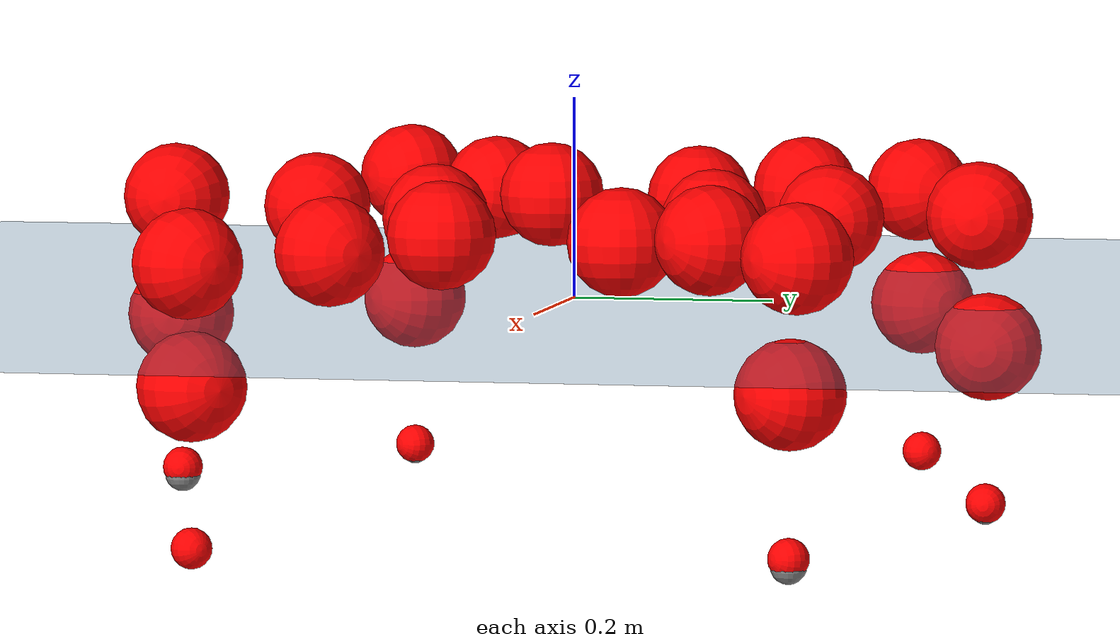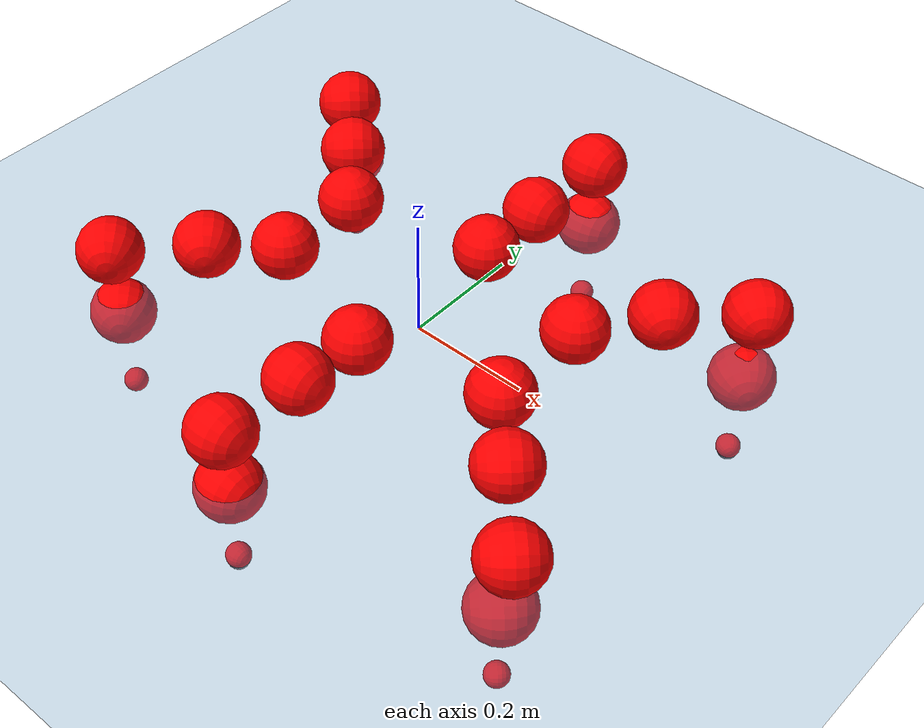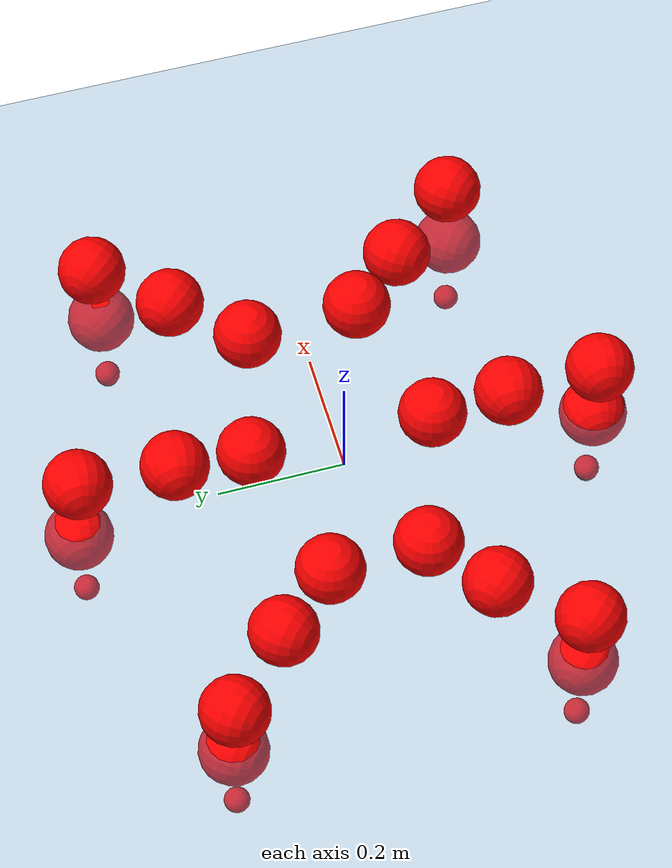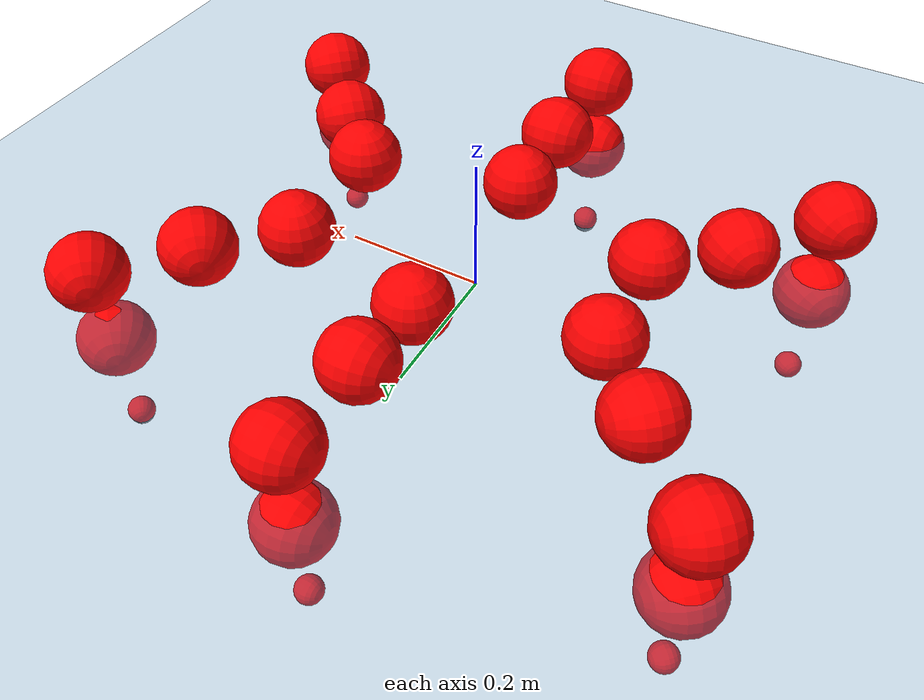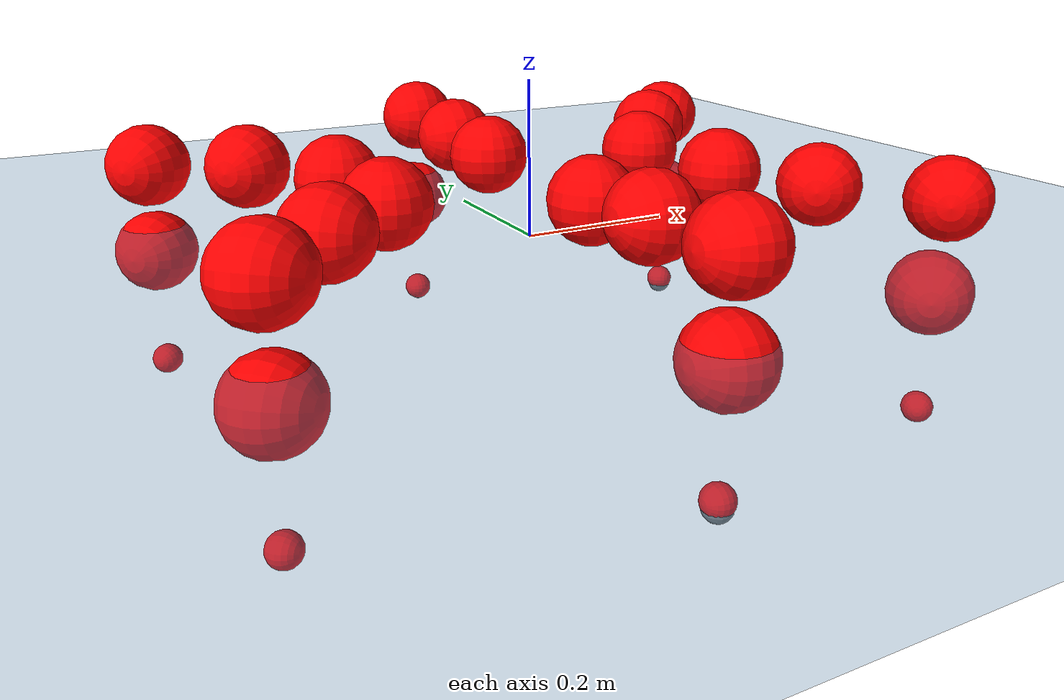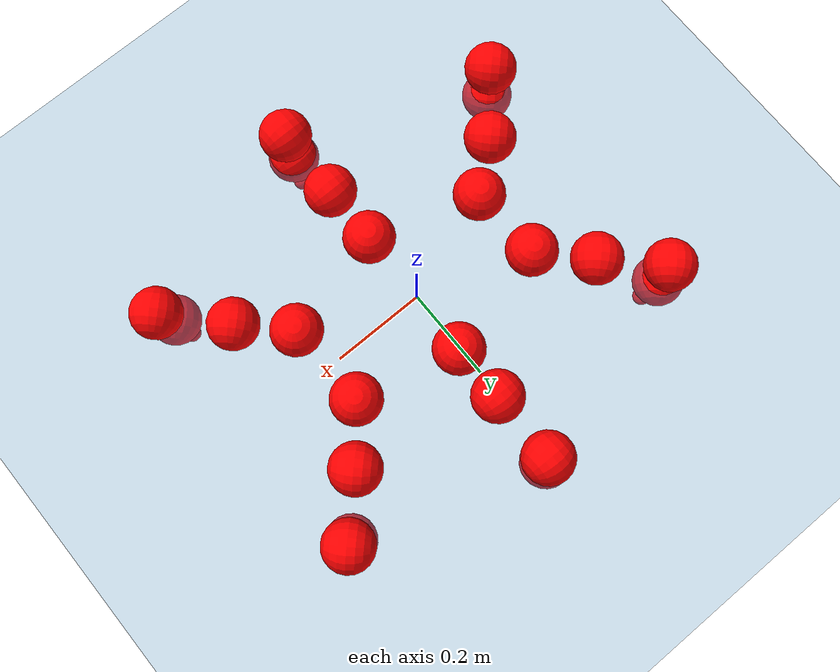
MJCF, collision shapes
<mujoco model="Golem">
  <compiler angle="radian" assetdir="assets" balanceinertia="true" inertiafromgeom="false"/>

  <option timestep="0.005" density="1.2" viscosity="2e-05"/>

  <size nkey="1"/>

  <visual>
    <quality shadowsize="8192"/>
    <map shadowclip="0.5"/>
  </visual>

  <default>
    <default class="/">
      <joint armature="0.01" damping="0.01" frictionloss="0.01"/>
      <geom contype="0" conaffinity="0" group="1" solref="-1000 -80"/>
      <site size="0.01 0.005 0.005" group="5"/>
      <general forcelimited="true" biastype="affine" gainprm="25" biasprm="0 -25 -0.5"/>
      <default class="visual">
        <geom type="mesh" group="2"/>
      </default>
      <default class="collision">
        <geom group="3"/>
      </default>
      <default class="foot">
        <geom size="0.01 0 0" condim="6" group="4" priority="1" solimp="0.015 1 0.01"/>
      </default>
      <default class="reward_collision_sphere">
        <geom group="5" rgba="1 0 0 1"/>
      </default>
    </default>
  </default>

  <asset>
    <texture type="skybox" colorspace="auto" name="//unnamed_texture_0" builtin="gradient" rgb1="0.95 0.95 0.95" rgb2="0.95 0.95 0.95" width="100" height="600"/>
    <texture type="2d" colorspace="auto" name="texplane" builtin="checker" rgb1="0.345 0.575 0.748" rgb2="0.345 0.575 0.748" markrgb="1 1 1" width="512" height="512"/>
    <material name="MatPlane" class="/" texture="texplane" texuniform="true" texrepeat="2 2" specular="0.9"/>
    <mesh name="body" class="/" file="body.stl" scale="0.001 0.001 0.001"/>
    <mesh name="coxa" class="/" file="coxa.stl" scale="0.001 0.001 0.001"/>
    <mesh name="femur" class="/" file="femur.stl" scale="0.001 0.001 0.001"/>
    <mesh name="tibia" class="/" file="tibia.stl" scale="0.001 0.001 0.001"/>
    <mesh name="tarsus" class="/" file="tarsus.stl" scale="0.001 0.001 0.001"/>
  </asset>

  <worldbody>
    <geom name="floor" class="/" size="100 100 0.125" type="plane" group="0" material="MatPlane"/>
    <light name="toplight_shadow" class="/" pos="0 0 5" dir="0.0990148 0.0990148 -0.990148" type="directional" ambient="0.04 0.04 0.04" diffuse="0.55 0.55 0.55" specular="0.12 0.12 0.12"/>
    <light name="toplight_fill" class="/" pos="0 0 5" dir="0.0990148 0.0990148 -0.990148" type="directional" castshadow="false" ambient="0.04 0.04 0.04" diffuse="0.3 0.3 0.3" specular="0.08 0.08 0.08"/>
    <body name="trunk" pos="0.00610917 0.00531075 -0.000375065" quat="0.999998 -0.000258958 0.00140195 0.00104064">
      <inertial pos="-0.00598076 0.000334638 0.010918" quat="0.99962 0.0106912 -0.0247286 -0.00588006" mass="8.2376" diaginertia="0.0616471 0.0434289 0.0214746"/>
      <joint name="//unnamed_joint_0" type="free"/>
      <geom name="//unnamed_geom_1" class="/" pos="0 0 0.0768034" quat="1 0 0 0" type="mesh" rgba="0.9 0.9 0.9 1" mesh="body"/>
      <site name="imu" class="/" pos="0.146193 -0.0304098 0.112413" size="0.0133579"/>
      <camera name="track" class="/" pos="0 -2.7156 0" quat="0.707107 0.707107 0 0" mode="trackcom"/>
      <camera name="ego_camera" class="/" pos="0.188438 0 0.120005" quat="-0.5 -0.5 0.5 0.5"/>
      <body name="coxa_RR" pos="-0.255344 -0.104278 0.0856113" quat="0.3832 0.000344417 0.000848675 -0.923665">
        <inertial pos="-0.000729631 7.37818e-05 -0.0024137" quat="0.999971 0.00309079 0.00448332 -0.00523473" mass="0.469522" diaginertia="0.0674898 0.0460603 0.0282141"/>
        <joint name="coxa_joint_RR" class="/" pos="0 0 0" axis="0.0056067 0.00129928 -0.999983" stiffness="0.00750148" range="-3.12802 3.20525" armature="0.0134772" damping="0.019882" frictionloss="0.0126899"/>
        <geom name="//unnamed_geom_2" class="/" type="mesh" rgba="0.2 0.2 0.2 1" mesh="coxa"/>
        <geom name="//unnamed_geom_3" class="reward_collision_sphere" size="0.0534317" pos="-0.0434857 0 0"/>
        <body name="femur_RR" pos="0.0787093 -0.0119832 -0.000760487" quat="0.500598 -0.498936 0.49988 0.500583">
          <inertial pos="0.0111858 0.000226859 0.0123084" quat="0.998346 0.0437422 -0.0188971 0.0321667" mass="0.525649" diaginertia="0.0690192 0.0498568 0.0271417"/>
          <joint name="femur_joint_RR" class="/" pos="0 0 0" axis="0.0162133 -0.0129665 -0.999784" range="-3.10771 3.11962" armature="0.0122686" damping="0" frictionloss="0.013683"/>
          <geom name="//unnamed_geom_4" class="/" type="mesh" rgba="0.9 0.9 0.9 1" mesh="femur"/>
          <geom name="//unnamed_geom_5" class="reward_collision_sphere" size="0.0534317"/>
          <body name="tibia_RR" pos="-0.00453283 -0.147432 0.0109878" quat="2.10839e-05 1 -0.000701074 0.000154793">
            <inertial pos="0.00169049 0.00118583 0.00897286" quat="0.999657 0.00937782 -0.021895 0.010888" mass="0.383348" diaginertia="0.0540316 0.0352854 0.0211792"/>
            <joint name="tibia_joint_RR" class="/" pos="0 0 0" axis="-0.0132286 -0.0386488 0.999165" stiffness="0.0246717" range="-3.03111 3.12561" armature="0.0159105" damping="0.002941" frictionloss="0.0184446"/>
            <geom name="//unnamed_geom_6" class="/" type="mesh" rgba="0.2 0.2 0.2 1" mesh="tibia"/>
            <geom name="//unnamed_geom_7" class="reward_collision_sphere" size="0.0534317"/>
            <body name="tarsus_RR" pos="0.129232 -0.00334754 0.00156267" quat="1 -0.000172238 2.8921e-05 -0.00073091">
              <inertial pos="0.0908394 -0.000335141 0.00216945" quat="0.48653 0.487954 0.548047 0.474167" mass="0.431684" diaginertia="0.0656682 0.0505955 0.0236656"/>
              <joint name="tarsus_joint_RR" class="/" pos="0 0 0" axis="0.0120175 -0.0577649 0.998258" range="-3.16339 3.25844" armature="0.0156058" damping="0.0263754" frictionloss="0.0122828"/>
              <geom name="//unnamed_geom_8" class="/" type="mesh" rgba="0.9 0.9 0.9 1" mesh="tarsus"/>
              <geom name="foot_1" class="foot" size="0.0142173" pos="0.162347 0 0" quat="0 -0.707107 0 0.707107"/>
              <geom name="//unnamed_geom_10" class="reward_collision_sphere" size="0.0534317"/>
              <geom name="//unnamed_geom_11" class="reward_collision_sphere" size="0.0200369" pos="0.155824 0 0"/>
              <site name="foot_1" class="foot" pos="0.162347 0 0" quat="0 -0.707107 0 0.707107" size="0.0133579"/>
            </body>
          </body>
        </body>
      </body>
      <body name="coxa_RM" pos="-0.000344987 -0.19017 0.0787993" quat="0.708597 0.000344562 0.00552407 -0.705592">
        <inertial pos="0.00825996 0.00152266 0.0100296" quat="0.999335 0.0123354 0.0288433 0.0185898" mass="0.472185" diaginertia="0.0780767 0.0462551 0.0265742"/>
        <joint name="coxa_joint_RM" class="/" pos="0 0 0" axis="0.0146422 0.0117063 -0.999824" range="-3.12871 3.12693" armature="0.0135616" damping="0.00840009" frictionloss="0.0157143"/>
        <geom name="//unnamed_geom_12" class="/" type="mesh" rgba="0.2 0.2 0.2 1" mesh="coxa"/>
        <geom name="//unnamed_geom_13" class="reward_collision_sphere" size="0.0534317" pos="-0.0434857 0 0"/>
        <body name="femur_RM" pos="0.0776304 -0.000202322 0.0108528" quat="0.501852 -0.500297 0.500707 0.497132">
          <inertial pos="-0.0103767 0.000978388 0.000205316" quat="0.998469 -0.0337955 0.0237246 -0.0367926" mass="0.481653" diaginertia="0.0627491 0.050674 0.024823"/>
          <joint name="femur_joint_RM" class="/" pos="0 0 0" axis="-0.0147199 0.038327 -0.999157" stiffness="0.0254676" range="-3.10741 3.11376" armature="0.0116696" damping="0" frictionloss="0.0128149"/>
          <geom name="//unnamed_geom_14" class="/" type="mesh" rgba="0.9 0.9 0.9 1" mesh="femur"/>
          <geom name="//unnamed_geom_15" class="reward_collision_sphere" size="0.0534317"/>
          <body name="tibia_RM" pos="-0.00786619 -0.145761 -0.00161797" quat="-0.000465497 1 -0.000148527 0.000120956">
            <inertial pos="0.0111337 -0.00314542 0.00542494" quat="1 -7.60308e-05 2.82047e-05 -2.19693e-05" mass="0.439114" diaginertia="0.0568102 0.0493798 0.0278403"/>
            <joint name="tibia_joint_RM" class="/" pos="0 0 0" axis="-0.0238306 -0.0196912 0.999522" stiffness="0.00332755" range="-3.10939 3.20005" armature="0.0138558" damping="0.0223912" frictionloss="0.0152782"/>
            <geom name="//unnamed_geom_16" class="/" type="mesh" rgba="0.2 0.2 0.2 1" mesh="tibia"/>
            <geom name="//unnamed_geom_17" class="reward_collision_sphere" size="0.0534317"/>
            <body name="tarsus_RM" pos="0.118791 -0.0032718 -0.000172494" quat="1 -0.000402805 0.000544585 -0.000162501">
              <inertial pos="0.0879783 0.00205778 -0.000797407" quat="0.497971 0.501934 0.498572 0.501511" mass="0.469429" diaginertia="0.0694831 0.0441094 0.0220042"/>
              <joint name="tarsus_joint_RM" class="/" pos="0 0 0" axis="-0.0335395 -0.0169771 0.999293" range="-3.11487 3.13712" armature="0.0139164" damping="0.008591" frictionloss="0.0141417"/>
              <geom name="//unnamed_geom_18" class="/" type="mesh" rgba="0.9 0.9 0.9 1" mesh="tarsus"/>
              <geom name="foot_2" class="foot" size="0.0181845" pos="0.162347 0 0" quat="0 -0.707107 0 0.707107"/>
              <geom name="//unnamed_geom_20" class="reward_collision_sphere" size="0.0534317"/>
              <geom name="//unnamed_geom_21" class="reward_collision_sphere" size="0.0200369" pos="0.155824 0 0"/>
              <site name="foot_2" class="foot" pos="0.162347 0 0" quat="0 -0.707107 0 0.707107" size="0.0133579"/>
            </body>
          </body>
        </body>
      </body>
      <body name="coxa_RF" pos="0.256867 -0.121814 0.0803931" quat="0.923895 -3.53405e-05 -2.44074e-05 -0.382647">
        <inertial pos="0.011959 -6.33382e-05 0.00186782" quat="0.999074 0.00462575 -0.031062 -0.0294174" mass="0.384406" diaginertia="0.0573462 0.0500625 0.0236904"/>
        <joint name="coxa_joint_RF" class="/" pos="0 0 0" axis="-0.00859178 -0.00164596 -0.999962" range="-3.07106 3.13788" armature="0.00881604" damping="0.0165184" frictionloss="0.0148789"/>
        <geom name="//unnamed_geom_22" class="/" type="mesh" rgba="0.2 0.2 0.2 1" mesh="coxa"/>
        <geom name="//unnamed_geom_23" class="reward_collision_sphere" size="0.0534317" pos="-0.0434857 0 0"/>
        <body name="femur_RF" pos="0.0828087 -0.0023368 -0.0102527" quat="0.499432 -0.500387 0.500674 0.499506">
          <inertial pos="-0.00509007 -0.0110788 -0.0046544" quat="0.999986 -0.00528882 8.37177e-05 0.000250627" mass="0.52066" diaginertia="0.0599484 0.0516502 0.0249818"/>
          <joint name="femur_joint_RF" class="/" pos="0 0 0" axis="0.0176676 0.0228767 -0.999582" stiffness="0.0536688" range="-3.13873 3.26421" armature="0.0140963" damping="0" frictionloss="0.0142201"/>
          <geom name="//unnamed_geom_24" class="/" type="mesh" rgba="0.9 0.9 0.9 1" mesh="femur"/>
          <geom name="//unnamed_geom_25" class="reward_collision_sphere" size="0.0534317"/>
          <body name="tibia_RF" pos="0.00468283 -0.154486 -0.00816864" quat="0.000642793 1 -0.000268201 0.000233527">
            <inertial pos="0.00977101 0.00675261 -0.00865969" quat="0.999678 4.56652e-05 0.0181428 -0.0177293" mass="0.434295" diaginertia="0.0627232 0.0467021 0.0253381"/>
            <joint name="tibia_joint_RF" class="/" pos="0 0 0" axis="0.00105288 0.00369382 0.999993" range="-3.11958 3.27816" armature="0.012346" damping="0.0670715" frictionloss="0.014269"/>
            <geom name="//unnamed_geom_26" class="/" type="mesh" rgba="0.2 0.2 0.2 1" mesh="tibia"/>
            <geom name="//unnamed_geom_27" class="reward_collision_sphere" size="0.0534317"/>
            <body name="tarsus_RF" pos="0.119295 -0.00985981 0.00931747" quat="0.999995 0.00200994 -0.000679081 0.00238102">
              <inertial pos="0.0858212 -0.000722235 -0.0020108" quat="0.497854 0.50048 0.498388 0.50326" mass="0.456256" diaginertia="0.0603954 0.0390339 0.027123"/>
              <joint name="tarsus_joint_RF" class="/" pos="0 0 0" axis="0.0087657 0.0103138 0.999908" stiffness="0.0118259" range="-3.0482 3.16005" armature="0.00821821" damping="0.00472223" frictionloss="0.00531885"/>
              <geom name="//unnamed_geom_28" class="/" type="mesh" rgba="0.9 0.9 0.9 1" mesh="tarsus"/>
              <geom name="foot_3" class="foot" size="0.00814942" pos="0.162347 0 0" quat="0 -0.707107 0 0.707107"/>
              <geom name="//unnamed_geom_30" class="reward_collision_sphere" size="0.0534317"/>
              <geom name="//unnamed_geom_31" class="reward_collision_sphere" size="0.0200369" pos="0.155824 0 0"/>
              <site name="foot_3" class="foot" pos="0.162347 0 0" quat="0 -0.707107 0 0.707107" size="0.0133579"/>
            </body>
          </body>
        </body>
      </body>
      <body name="coxa_LR" pos="-0.260822 0.110566 0.0844088" quat="0.383787 0.00345824 0.00330702 0.923409">
        <inertial pos="-0.000124358 -0.00106828 0.0115296" quat="0.99927 -0.0104721 0.00663606 -0.0361316" mass="0.611258" diaginertia="0.074106 0.0531818 0.0287043"/>
        <joint name="coxa_joint_LR" class="/" pos="0 0 0" axis="-6.27823e-05 3.72464e-05 -1" range="-3.10326 2.90566" armature="0.00819938" damping="0.00837674" frictionloss="0.021115"/>
        <geom name="//unnamed_geom_32" class="/" type="mesh" rgba="0.2 0.2 0.2 1" mesh="coxa"/>
        <geom name="//unnamed_geom_33" class="reward_collision_sphere" size="0.0534317" pos="-0.0434857 0 0"/>
        <body name="femur_LR" pos="0.0846814 -0.00573538 0.00394084" quat="0.499789 -0.500472 0.499397 0.500341">
          <inertial pos="-0.00114957 -0.00103049 -0.000552041" quat="0.99968 0.00805377 -0.0231604 0.00624387" mass="0.505105" diaginertia="0.070689 0.0415756 0.0267476"/>
          <joint name="femur_joint_LR" class="/" pos="0 0 0" axis="-0.00506739 0.0101937 0.999935" stiffness="0.029407" range="-3.10838 3.29076" armature="0.00942023" damping="0" frictionloss="0.0145957"/>
          <geom name="//unnamed_geom_34" class="/" type="mesh" rgba="0.9 0.9 0.9 1" mesh="femur"/>
          <geom name="//unnamed_geom_35" class="reward_collision_sphere" size="0.0534317"/>
          <body name="tibia_LR" pos="0.00842086 -0.145912 0.00212535" quat="0.00111639 0.999993 0.00239396 -0.00277062">
            <inertial pos="-0.00582665 -0.0106362 0.000936563" quat="0.999208 -0.0261761 -0.0155367 0.0256225" mass="0.510992" diaginertia="0.0536979 0.0408125 0.0281357"/>
            <joint name="tibia_joint_LR" class="/" pos="0 0 0" axis="-0.00360974 -0.0172741 -0.999844" range="-3.16783 3.11883" armature="0.0118119" damping="0" frictionloss="0.010029"/>
            <geom name="//unnamed_geom_36" class="/" type="mesh" rgba="0.2 0.2 0.2 1" mesh="tibia"/>
            <geom name="//unnamed_geom_37" class="reward_collision_sphere" size="0.0534317"/>
            <body name="tarsus_LR" pos="0.117901 0.00279117 0.00418166" quat="0.999998 5.51692e-05 0.000226881 0.0017994">
              <inertial pos="0.0911456 0.00579131 0.00240602" quat="0.503227 0.49138 0.490679 0.514337" mass="0.547212" diaginertia="0.0739792 0.0544127 0.0290035"/>
              <joint name="tarsus_joint_LR" class="/" pos="0 0 0" axis="-0.00178822 0.00603282 -0.99998" range="-3.13803 3.15133" armature="0.0216398" damping="0.0261359" frictionloss="0.0150236"/>
              <geom name="//unnamed_geom_38" class="/" type="mesh" rgba="0.9 0.9 0.9 1" mesh="tarsus"/>
              <geom name="foot_4" class="foot" size="0.0129572" pos="0.162347 0 0" quat="0.707107 0 -0.707107 0"/>
              <geom name="//unnamed_geom_40" class="reward_collision_sphere" size="0.0534317"/>
              <geom name="//unnamed_geom_41" class="reward_collision_sphere" size="0.0200369" pos="0.155824 0 0"/>
              <site name="foot_4" class="foot" pos="0.162347 0 0" quat="0.707107 0 -0.707107 0" size="0.0133579"/>
            </body>
          </body>
        </body>
      </body>
      <body name="coxa_LM" pos="0.00645817 0.181473 0.0784939" quat="0.708236 -0.00507617 -0.0035684 0.705949">
        <inertial pos="-0.0085857 0.00962382 0.00531168" quat="0.999113 0.00223661 -0.00275021 0.04196" mass="0.465829" diaginertia="0.066392 0.0436191 0.0229912"/>
        <joint name="coxa_joint_LM" class="/" pos="0 0 0" axis="-0.000166795 0.000393899 -1" range="-3.17386 3.1652" armature="0.00573411" damping="0.0290544" frictionloss="0.0119263"/>
        <geom name="//unnamed_geom_42" class="/" type="mesh" rgba="0.2 0.2 0.2 1" mesh="coxa"/>
        <geom name="//unnamed_geom_43" class="reward_collision_sphere" size="0.0534317" pos="-0.0434857 0 0"/>
        <body name="femur_LM" pos="0.0748322 -0.00260449 0.00639759" quat="0.501562 -0.496915 0.500577 0.500933">
          <inertial pos="0.00821103 0.000183677 0.00972079" quat="0.999652 0.0118821 0.0143803 -0.0186756" mass="0.385009" diaginertia="0.0591599 0.0425589 0.0229181"/>
          <joint name="femur_joint_LM" class="/" pos="0 0 0" axis="-0.00925093 0.00507926 0.999944" range="-3.25628 3.10759" armature="0.0090507" damping="0.0233775" frictionloss="0.0131702"/>
          <geom name="//unnamed_geom_44" class="/" type="mesh" rgba="0.9 0.9 0.9 1" mesh="femur"/>
          <geom name="//unnamed_geom_45" class="reward_collision_sphere" size="0.0534317"/>
          <body name="tibia_LM" pos="-0.00639367 -0.149247 -0.00225527" quat="0.000623427 1 0.000596202 -0.000253863">
            <inertial pos="-0.0112625 -0.0118786 -0.0122685" quat="0.999972 0.00484678 -0.00561211 0.000844344" mass="0.466951" diaginertia="0.0658982 0.0507316 0.0222922"/>
            <joint name="tibia_joint_LM" class="/" pos="0 0 0" axis="0.0245196 0.00210558 -0.999697" stiffness="0.0360792" range="-3.17164 3.16856" armature="0.0089479" damping="0" frictionloss="0.0183889"/>
            <geom name="//unnamed_geom_46" class="/" type="mesh" rgba="0.2 0.2 0.2 1" mesh="tibia"/>
            <geom name="//unnamed_geom_47" class="reward_collision_sphere" size="0.0534317"/>
            <body name="tarsus_LM" pos="0.130295 0.00899743 -0.00806334" quat="0.999995 -0.00205093 -0.000294151 -0.00228903">
              <inertial pos="0.0841853 -0.00323335 -0.00562445" quat="0.50091 0.502435 0.498943 0.497699" mass="0.408296" diaginertia="0.0620899 0.0332361 0.0222562"/>
              <joint name="tarsus_joint_LM" class="/" pos="0 0 0" axis="-0.0321798 0.0245598 -0.99918" range="-2.87911 3.15015" armature="0.0124417" damping="0" frictionloss="0.0139035"/>
              <geom name="//unnamed_geom_48" class="/" type="mesh" rgba="0.9 0.9 0.9 1" mesh="tarsus"/>
              <geom name="foot_5" class="foot" size="0.0143198" pos="0.162347 0 0" quat="0.707107 0 -0.707107 0"/>
              <geom name="//unnamed_geom_50" class="reward_collision_sphere" size="0.0534317"/>
              <geom name="//unnamed_geom_51" class="reward_collision_sphere" size="0.0200369" pos="0.155824 0 0"/>
              <site name="foot_5" class="foot" pos="0.162347 0 0" quat="0.707107 0 -0.707107 0" size="0.0133579"/>
            </body>
          </body>
        </body>
      </body>
      <body name="coxa_LF" pos="0.251795 0.11747 0.0758743" quat="0.923677 0.00407238 0.00279607 0.38314">
        <inertial pos="-0.000320007 -0.0115461 -0.00192348" quat="0.999975 -0.00642387 -0.00308818 -0.000211109" mass="0.447812" diaginertia="0.0584785 0.0356485 0.0216828"/>
        <joint name="coxa_joint_LF" class="/" pos="0 0 0" axis="-0.00916105 -0.027989 -0.999566" range="-3.11867 3.16039" armature="0.00534049" damping="0.0045981" frictionloss="0.0121607"/>
        <geom name="//unnamed_geom_52" class="/" type="mesh" rgba="0.2 0.2 0.2 1" mesh="coxa"/>
        <geom name="//unnamed_geom_53" class="reward_collision_sphere" size="0.0534317" pos="-0.0434857 0 0"/>
        <body name="femur_LF" pos="0.0885972 0.0130548 0.0105998" quat="0.497882 -0.502706 0.50123 0.498166">
          <inertial pos="-0.00644007 0.000430361 -0.0122456" quat="0.998928 0.0326955 0.0186239 0.0269572" mass="0.482138" diaginertia="0.0687657 0.0390211 0.0246309"/>
          <joint name="femur_joint_LF" class="/" pos="0 0 0" axis="0.0366417 0.0123865 0.999252" stiffness="0.0420104" range="-3.17115 3.36005" armature="0.0140749" damping="0.0362178" frictionloss="0.0125919"/>
          <geom name="//unnamed_geom_54" class="/" type="mesh" rgba="0.9 0.9 0.9 1" mesh="femur"/>
          <geom name="//unnamed_geom_55" class="reward_collision_sphere" size="0.0534317"/>
          <body name="tibia_LF" pos="0.0072509 -0.142221 0.00122357" quat="0.00467711 0.999989 -0.000556415 0.000306525">
            <inertial pos="-0.000907144 0.0106438 0.000672014" quat="1 3.75807e-05 7.96414e-05 5.93051e-05" mass="0.466475" diaginertia="0.0677893 0.0461033 0.0255621"/>
            <joint name="tibia_joint_LF" class="/" pos="0 0 0" axis="0.0394161 0.0166134 -0.999085" range="-2.96636 3.16269" armature="0.00956592" damping="0.012438" frictionloss="0.00666559"/>
            <geom name="//unnamed_geom_56" class="/" type="mesh" rgba="0.2 0.2 0.2 1" mesh="tibia"/>
            <geom name="//unnamed_geom_57" class="reward_collision_sphere" size="0.0534317"/>
            <body name="tarsus_LF" pos="0.128991 -0.0059403 0.00362822" quat="0.99998 0.00185958 -0.00600402 -0.000367365">
              <inertial pos="0.0931668 0.000360683 -0.00100546" quat="0.500635 0.501358 0.501883 0.496103" mass="0.463304" diaginertia="0.0681039 0.048413 0.0282074"/>
              <joint name="tarsus_joint_LF" class="/" pos="0 0 0" axis="0.0392132 0.0470754 -0.998121" range="-3.19184 3.30974" armature="0.0116285" damping="0.0593276" frictionloss="0.0104056"/>
              <geom name="//unnamed_geom_58" class="/" type="mesh" rgba="0.9 0.9 0.9 1" mesh="tarsus"/>
              <geom name="foot_6" class="foot" size="0.017695" pos="0.162347 0 0" quat="0.707107 0 -0.707107 0"/>
              <geom name="//unnamed_geom_60" class="reward_collision_sphere" size="0.0534317"/>
              <geom name="//unnamed_geom_61" class="reward_collision_sphere" size="0.0200369" pos="0.155824 0 0"/>
              <site name="foot_6" class="foot" pos="0.162347 0 0" quat="0.707107 0 -0.707107 0" size="0.0133579"/>
            </body>
          </body>
        </body>
      </body>
    </body>
  </worldbody>

  <contact>
    <pair class="/" geom1="floor" geom2="foot_1" name="//unnamed_contact_0"/>
    <pair class="/" geom1="floor" geom2="foot_2" name="//unnamed_contact_1"/>
    <pair class="/" geom1="floor" geom2="foot_3" name="//unnamed_contact_2"/>
    <pair class="/" geom1="floor" geom2="foot_4" name="//unnamed_contact_3"/>
    <pair class="/" geom1="floor" geom2="foot_5" name="//unnamed_contact_4"/>
    <pair class="/" geom1="floor" geom2="foot_6" name="//unnamed_contact_5"/>
  </contact>

  <actuator>
    <general name="coxa_joint_RR" class="/" joint="coxa_joint_RR" forcerange="-13.6861 13.6861" gainprm="30.4373" biasprm="0 -30.4373 -0.759559"/>
    <general name="femur_joint_RR" class="/" joint="femur_joint_RR" forcerange="-8.29602 8.29602" gainprm="30.4373" biasprm="0 -30.4373 -0.759559"/>
    <general name="tibia_joint_RR" class="/" joint="tibia_joint_RR" forcerange="-14.0977 14.0977" gainprm="30.4373" biasprm="0 -30.4373 -0.759559"/>
    <general name="tarsus_joint_RR" class="/" joint="tarsus_joint_RR" forcerange="-7.97119 7.97119" gainprm="30.4373" biasprm="0 -30.4373 -0.759559"/>
    <general name="coxa_joint_RM" class="/" joint="coxa_joint_RM" forcerange="-9.68034 9.68034" gainprm="30.4373" biasprm="0 -30.4373 -0.759559"/>
    <general name="femur_joint_RM" class="/" joint="femur_joint_RM" forcerange="-9.81077 9.81077" gainprm="30.4373" biasprm="0 -30.4373 -0.759559"/>
    <general name="tibia_joint_RM" class="/" joint="tibia_joint_RM" forcerange="-13.3002 13.3002" gainprm="30.4373" biasprm="0 -30.4373 -0.759559"/>
    <general name="tarsus_joint_RM" class="/" joint="tarsus_joint_RM" forcerange="-5.5567 5.5567" gainprm="30.4373" biasprm="0 -30.4373 -0.759559"/>
    <general name="coxa_joint_RF" class="/" joint="coxa_joint_RF" forcerange="-9.4606 9.4606" gainprm="30.4373" biasprm="0 -30.4373 -0.759559"/>
    <general name="femur_joint_RF" class="/" joint="femur_joint_RF" forcerange="-9.19654 9.19654" gainprm="30.4373" biasprm="0 -30.4373 -0.759559"/>
    <general name="tibia_joint_RF" class="/" joint="tibia_joint_RF" forcerange="-5.93243 5.93243" gainprm="30.4373" biasprm="0 -30.4373 -0.759559"/>
    <general name="tarsus_joint_RF" class="/" joint="tarsus_joint_RF" forcerange="-8.37898 8.37898" gainprm="30.4373" biasprm="0 -30.4373 -0.759559"/>
    <general name="coxa_joint_LR" class="/" joint="coxa_joint_LR" forcerange="-9.73081 9.73081" gainprm="30.4373" biasprm="0 -30.4373 -0.759559"/>
    <general name="femur_joint_LR" class="/" joint="femur_joint_LR" forcerange="-12.8066 12.8066" gainprm="30.4373" biasprm="0 -30.4373 -0.759559"/>
    <general name="tibia_joint_LR" class="/" joint="tibia_joint_LR" forcerange="-11.0882 11.0882" gainprm="30.4373" biasprm="0 -30.4373 -0.759559"/>
    <general name="tarsus_joint_LR" class="/" joint="tarsus_joint_LR" forcerange="-12.058 12.058" gainprm="30.4373" biasprm="0 -30.4373 -0.759559"/>
    <general name="coxa_joint_LM" class="/" joint="coxa_joint_LM" forcerange="-11.0906 11.0906" gainprm="30.4373" biasprm="0 -30.4373 -0.759559"/>
    <general name="femur_joint_LM" class="/" joint="femur_joint_LM" forcerange="-10.3491 10.3491" gainprm="30.4373" biasprm="0 -30.4373 -0.759559"/>
    <general name="tibia_joint_LM" class="/" joint="tibia_joint_LM" forcerange="-12.3565 12.3565" gainprm="30.4373" biasprm="0 -30.4373 -0.759559"/>
    <general name="tarsus_joint_LM" class="/" joint="tarsus_joint_LM" forcerange="-9.99949 9.99949" gainprm="30.4373" biasprm="0 -30.4373 -0.759559"/>
    <general name="coxa_joint_LF" class="/" joint="coxa_joint_LF" forcerange="-10.734 10.734" gainprm="30.4373" biasprm="0 -30.4373 -0.759559"/>
    <general name="femur_joint_LF" class="/" joint="femur_joint_LF" forcerange="-9.28208 9.28208" gainprm="30.4373" biasprm="0 -30.4373 -0.759559"/>
    <general name="tibia_joint_LF" class="/" joint="tibia_joint_LF" forcerange="-7.39555 7.39555" gainprm="30.4373" biasprm="0 -30.4373 -0.759559"/>
    <general name="tarsus_joint_LF" class="/" joint="tarsus_joint_LF" forcerange="-11.0265 11.0265" gainprm="30.4373" biasprm="0 -30.4373 -0.759559"/>
  </actuator>

  <sensor>
    <gyro site="imu" name="imu_angular_velocity"/>
    <velocimeter site="imu" name="imu_linear_velocity"/>
    <framelinvel objtype="site" objname="foot_1" name="foot_1_global_linear_velocity"/>
    <framelinvel objtype="site" objname="foot_2" name="foot_2_global_linear_velocity"/>
    <framelinvel objtype="site" objname="foot_3" name="foot_3_global_linear_velocity"/>
    <framelinvel objtype="site" objname="foot_4" name="foot_4_global_linear_velocity"/>
    <framelinvel objtype="site" objname="foot_5" name="foot_5_global_linear_velocity"/>
    <framelinvel objtype="site" objname="foot_6" name="foot_6_global_linear_velocity"/>
  </sensor>

  <keyframe>
    <key name="home" qpos="0 0 0.1457 1 0 0 0 0 0 0 0 0 0 0 0 0 0 0 0 0 0 0 0 0 0 0 0 0 0 0 0"/>
  </keyframe>
</mujoco>
